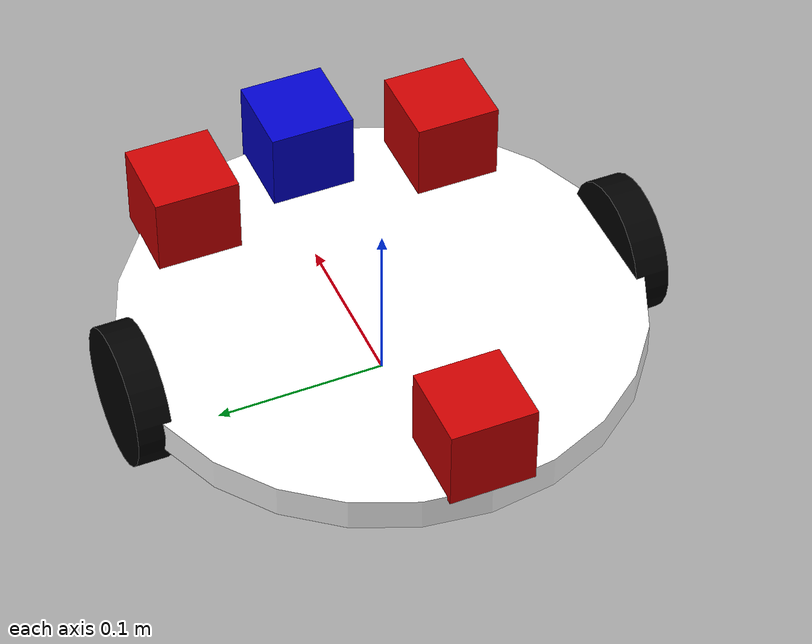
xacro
<?xml version="1.0" ?>
<!-- |    This document was autogenerated by xacro from diff_wheeled_robot.xacro       | -->
<!-- |    EDITING THIS FILE BY HAND IS NOT RECOMMENDED                                 | -->
<robot name="differential_wheeled_robot" xmlns:xacro="http://www.ros.org/wiki/xacro">
  <!-- Wheels -->
  <!-- in kg-->
  <!-- Defining the colors used in this robot -->
  <material name="Black">
    <color rgba="0.0 0.0 0.0 1.0"/>
  </material>
  <material name="Red">
    <color rgba="0.8 0.0 0.0 1.0"/>
  </material>
  <material name="White">
    <color rgba="1.0 1.0 1.0 1.0"/>
  </material>
  <material name="Blue">
    <color rgba="0.0 0.0 0.8 1.0"/>
  </material>
  <!-- PROPERTY LIST -->
  <!--All units in m-kg-s-radians unit system -->
  <!-- Main body radius and height -->
  <!-- Main Body Cylinder base   -->
  <!-- in kg-->
  <!-- caster wheel radius and height -->
  <!-- caster wheel mass -->
  <!-- in kg-->
  <!-- caster wheel radius and height -->
  <!-- caster wheel mass -->
  <!-- in kg-->
  <!-- Wheels -->
   --&gt;
  <!-- in kg-->
  <!-- Hokuyo Laser scanner -->
  <!-- Macro for calculating inertia of cylinder -->
  <!-- BASE-FOOTPRINT -->
  <!-- base_footprint is a fictitious link(frame) that is on the ground right below base_link origin -->
  <link name="base_footprint">
    <inertial>
      <mass value="0.0001"/>
      <origin xyz="0 0 0"/>
      <inertia ixx="0.0001" ixy="0.0" ixz="0.0" iyy="0.0001" iyz="0.0" izz="0.0001"/>
    </inertial>
    <visual>
      <origin rpy="0 0 0" xyz="0 0 0"/>
      <geometry>
        <box size="0.001 0.001 0.001"/>
      </geometry>
    </visual>
  </link>
  <gazebo reference="base_footprint">
    <turnGravityOff>false</turnGravityOff>
  </gazebo>
  <joint name="base_footprint_joint" type="fixed">
    <origin rpy="0 0 0" xyz="0 0 0.04"/>
    <parent link="base_footprint"/>
    <child link="base_link"/>
  </joint>
  <!-- BASE-LINK -->
  <!--Actual body/chassis of the robot-->
  <link name="base_link">
    <inertial>
      <mass value="5"/>
      <origin xyz="0 0 0"/>
      <!--The 3x3 rotational inertia matrix. -->
      <inertia ixx="0.0282916666667" ixy="0" ixz="0" iyy="0.0282916666667" iyz="0" izz="0.05625"/>
    </inertial>
    <visual>
      <origin rpy="0 0 0" xyz="0 0 0"/>
      <geometry>
        <cylinder length="0.02" radius="0.15"/>
      </geometry>
      <material name="White"/>
    </visual>
    <collision>
      <origin rpy="0 0 0 " xyz="0 0 0"/>
      <geometry>
        <cylinder length="0.02" radius="0.15"/>
      </geometry>
    </collision>
  </link>
  <gazebo reference="base_link">
    <material>Gazebo/White</material>
    <turnGravityOff>false</turnGravityOff>
  </gazebo>
  <!--fb : front, back ; lr: left, right -->
  <link name="front_right_wheel">
    <visual>
      <origin rpy="1.57079632679 0  0 " xyz="0 0 0"/>
      <geometry>
        <cylinder length="0.02" radius="0.04"/>
      </geometry>
      <material name="Black"/>
    </visual>
    <collision>
      <origin rpy="1.57079632679 0 0 " xyz="0 0 0"/>
      <geometry>
        <cylinder length="0.02" radius="0.04"/>
      </geometry>
    </collision>
    <inertial>
      <mass value="2.5"/>
      <origin xyz="0 0 0"/>
      <inertia ixx="0.00108333333333" ixy="0" ixz="0" iyy="0.00108333333333" iyz="0" izz="0.002"/>
    </inertial>
  </link>
  <gazebo reference="front_right_wheel">
    <mu1 value="1.0"/>
    <mu2 value="1.0"/>
    <kp value="10000000.0"/>
    <kd value="1.0"/>
    <fdir1 value="1 0 0"/>
    <material>Gazebo/Grey</material>
    <turnGravityOff>false</turnGravityOff>
  </gazebo>
  <joint name="front_right_wheel_joint" type="continuous">
    <parent link="base_link"/>
    <child link="front_right_wheel"/>
    <origin rpy="0 0 0" xyz="0.0 0.15 0.0"/>
    <axis rpy="0  0" xyz="0 1 0"/>
    <limit effort="100" velocity="100"/>
    <joint_properties damping="0.0" friction="0.0"/>
  </joint>
  <!-- Transmission is important to link the joints and the controller -->
  <transmission name="front_right_wheel_joint_trans">
    <type>transmission_interface/SimpleTransmission</type>
    <joint name="front_right_wheel_joint"/>
    <actuator name="front_right_wheel_joint_motor">
      <hardwareInterface>EffortJointInterface</hardwareInterface>
      <mechanicalReduction>1</mechanicalReduction>
    </actuator>
  </transmission>
  <!--fb : front, back ; lr: left, right -->
  <link name="front_left_wheel">
    <visual>
      <origin rpy="1.57079632679 0  0 " xyz="0 0 0"/>
      <geometry>
        <cylinder length="0.02" radius="0.04"/>
      </geometry>
      <material name="Black"/>
    </visual>
    <collision>
      <origin rpy="1.57079632679 0 0 " xyz="0 0 0"/>
      <geometry>
        <cylinder length="0.02" radius="0.04"/>
      </geometry>
    </collision>
    <inertial>
      <mass value="2.5"/>
      <origin xyz="0 0 0"/>
      <inertia ixx="0.00108333333333" ixy="0" ixz="0" iyy="0.00108333333333" iyz="0" izz="0.002"/>
    </inertial>
  </link>
  <gazebo reference="front_left_wheel">
    <mu1 value="1.0"/>
    <mu2 value="1.0"/>
    <kp value="10000000.0"/>
    <kd value="1.0"/>
    <fdir1 value="1 0 0"/>
    <material>Gazebo/Grey</material>
    <turnGravityOff>false</turnGravityOff>
  </gazebo>
  <joint name="front_left_wheel_joint" type="continuous">
    <parent link="base_link"/>
    <child link="front_left_wheel"/>
    <origin rpy="0 0 0" xyz="0.0 -0.15 0.0"/>
    <axis rpy="0  0" xyz="0 1 0"/>
    <limit effort="100" velocity="100"/>
    <joint_properties damping="0.0" friction="0.0"/>
  </joint>
  <!--Transmission is important to link the joints and the controller -->
  <transmission name="front_left_wheel_joint_trans">
    <type>transmission_interface/SimpleTransmission</type>
    <joint name="front_left_wheel_joint"/>
    <actuator name="front_left_wheel_joint_motor">
      <hardwareInterface>EffortJointInterface</hardwareInterface>
      <mechanicalReduction>1</mechanicalReduction>
    </actuator>
  </transmission>
  <!--Caster front  -->
  <link name="caster_front_link">
    <visual>
      <origin rpy="1.57079632679 0 0" xyz="0 0.02 0"/>
      <geometry>
        <sphere radius="0.025"/>
      </geometry>
      <material name="Black"/>
    </visual>
    <collision>
      <geometry>
        <sphere radius="0.025"/>
      </geometry>
      <origin rpy="1.57079632679 0 0" xyz="0 0.02 0"/>
    </collision>
    <inertial>
      <mass value="0.5"/>
      <origin xyz="0 0 0"/>
      <inertia ixx="0.001" ixy="0.0" ixz="0.0" iyy="0.001" iyz="0.0" izz="0.001"/>
    </inertial>
  </link>
  <joint name="caster_front_joint" type="fixed">
    <parent link="base_link"/>
    <child link="caster_front_link"/>
    <origin rpy="-1.57079632679 0 0" xyz="0.115 0.0 0.007"/>
  </joint>
  <gazebo reference="caster_front_link">
    <turnGravityOff>false</turnGravityOff>
  </gazebo>
  <!--Caster back  -->
  <link name="caster_back_link">
    <visual>
      <origin rpy="1.57079632679 0 0" xyz="0.02 0.02 0 "/>
      <geometry>
        <sphere radius="0.025"/>
      </geometry>
      <material name="Black"/>
    </visual>
    <collision>
      <geometry>
        <sphere radius="0.025"/>
      </geometry>
      <origin rpy="1.57079632679 0 0" xyz="0 0.02 0 "/>
    </collision>
    <inertial>
      <mass value="0.5"/>
      <origin xyz="0 0 0"/>
      <inertia ixx="0.001" ixy="0.0" ixz="0.0" iyy="0.001" iyz="0.0" izz="0.001"/>
    </inertial>
  </link>
  <joint name="caster_back_joint" type="fixed">
    <parent link="base_link"/>
    <child link="caster_back_link"/>
    <origin rpy="-1.57079632679 0 0" xyz="-0.135 0.0 0.009"/>
  </joint>
  <gazebo reference="caster_back_link">
    <turnGravityOff>false</turnGravityOff>
  </gazebo>
  <!-- SENSORS -->

  <link name="hokuyo_link">
    <visual>
      <origin rpy="0 0 0" xyz="0 0 0"/>
      <geometry>
        <box size="0.05 0.05 0.05"/>
      </geometry>
      <material name="Blue"/>
    </visual>
  </link>
  <joint name="hokuyo_joint" type="fixed">
    <origin rpy="0 0 0" xyz="0.125 0 0.0325"/>
    <parent link="base_link"/>
    <child link="hokuyo_link"/>
  </joint>
  <gazebo reference="hokuyo_link">
    <material>Gazebo/Blue</material>
    <turnGravityOff>false</turnGravityOff>
    <sensor name="head_hokuyo_sensor" type="ray">
      <pose>0.025 0 0 0 0 0</pose>
      <visualize>false</visualize>
      <update_rate>40</update_rate>
      <ray>
        <scan>
          <horizontal>
            <samples>720</samples>
            <resolution>1</resolution>
            <min_angle>-1.570796</min_angle>
            <max_angle>1.570796</max_angle>
          </horizontal>
        </scan>
        <range>
          <min>0.10</min>
          <max>10.0</max>
          <resolution>0.001</resolution>
        </range>
      </ray>
      <plugin filename="libgazebo_ros_laser.so" name="gazebo_ros_head_hokuyo_controller">
        <topicName>/scan</topicName>
        <frameName>hokuyo_link</frameName>
      </plugin>
    </sensor>
  </gazebo>

  <joint name="camera_joint" type="fixed">
    <axis xyz="0 1 0" />
    <origin xyz="-0.125 0 0.0325" rpy="0 0 3.14"/>
    <parent link="base_link"/>
    <child link="camera_link"/>
  </joint>

  <!-- Camera -->
  <link name="camera_link">
    <collision>
      <origin xyz="0 0 0" rpy="0 0 0"/>
      <geometry>
    <box size="0.05 0.05 0.05"/>
      </geometry>
    </collision>

    <visual>
      <origin xyz="0 0 0" rpy="0 0 0"/>
      <geometry>
    <box size="0.05 0.05 0.05"/>
      </geometry>
      <material name="Red"/>
    </visual>

    <inertial>
      <mass value="1" />
      <origin xyz="0 0 0" rpy="0 0 0"/>
      <inertia ixx="1e-6" ixy="0" ixz="0" iyy="1e-6" iyz="0" izz="1e-6" />
    </inertial>
  </link>

  <gazebo reference="camera_link">
    <sensor type="camera" name="bcamera">
      <update_rate>30.0</update_rate>
      <camera name="head">
        <horizontal_fov>1.3962634</horizontal_fov>
        <image>
          <width>800</width>
          <height>800</height>
          <format>R8G8B8</format>
        </image>
        <clip>
          <near>0.02</near>
          <far>300</far>
        </clip>
        <noise>
          <type>gaussian</type>
          <!-- Noise is sampled independently per pixel on each frame.
               That pixel's noise value is added to each of its color
               channels, which at that point lie in the range [0,1]. -->
          <mean>0.0</mean>
          <stddev>0.007</stddev>
        </noise>
      </camera>
      <plugin name="camera_controller" filename="libgazebo_ros_camera.so">
        <alwaysOn>true</alwaysOn>
        <updateRate>0.0</updateRate>
        <cameraName>rrbot/bcamera</cameraName>
        <imageTopicName>image_raw</imageTopicName>
        <cameraInfoTopicName>camera_info</cameraInfoTopicName>
        <frameName>camera_link</frameName>
        <hackBaseline>0.07</hackBaseline>
        <distortionK1>0.0</distortionK1>
        <distortionK2>0.0</distortionK2>
        <distortionK3>0.0</distortionK3>
        <distortionT1>0.0</distortionT1>
        <distortionT2>0.0</distortionT2>
      </plugin>
    </sensor>
  </gazebo>

<!--Right camera-->

  <joint name="camera_joint1" type="fixed">
    <axis xyz="0 1 0" />
    <origin xyz="0.1 0.08 0.0325" rpy="0 0 0"/>
    <parent link="base_link"/>
    <child link="r_camera"/>
  </joint>

  <link name="r_camera">
    <collision>
      <origin xyz="0 0 0" rpy="0 0 0"/>
      <geometry>
    <box size="0.05 0.05 0.05"/>
      </geometry>
    </collision>

    <visual>
      <origin xyz="0 0 0" rpy="0 0 0"/>
      <geometry>
    <box size="0.05 0.05 0.05"/>
      </geometry>
      <material name="Red"/>
    </visual>

    <inertial>
      <mass value="1" />
      <origin xyz="0 0 0" rpy="0 0 0"/>
      <inertia ixx="1e-6" ixy="0" ixz="0" iyy="1e-6" iyz="0" izz="1e-6" />
    </inertial>
  </link>
   <gazebo reference='r_camera'>
  <material> gazebo/white</material>
  </gazebo>

<!--Left camera-->

  <joint name="camera_joint2" type="fixed">
    <axis xyz="0 1 0" />
    <origin xyz="0.1 -0.08 0.0325" rpy="0 0 0"/>
    <parent link="base_link"/>
    <child link="l_camera"/>
  </joint>

  <link name="l_camera">
    <collision>
      <origin xyz="0 0 0" rpy="0 0 0"/>
      <geometry>
    <box size="0.05 0.05 0.05"/>
      </geometry>
    </collision>

    <visual>
      <origin xyz="0 0 0" rpy="0 0 0"/>
      <geometry>
    <box size="0.05 0.05 0.05"/>
      </geometry>
      <material name="Red"/>
    </visual>

    <inertial>
      <mass value="1" />
      <origin xyz="0 0 0" rpy="0 0 0"/>
      <inertia ixx="1e-6" ixy="0" ixz="0" iyy="1e-6" iyz="0" izz="1e-6" />
    </inertial>
  </link>

 <gazebo reference="l_camera">
 <material> gazebo/white</material>
    <sensor type="multicamera" name="stereo_camera">
      <update_rate>30.0</update_rate>
      <camera name="left">
        <horizontal_fov>1.3962634</horizontal_fov>
        <image>
          <width>800</width>
          <height>800</height>
          <format>R8G8B8</format>
        </image>
        <clip>
          <near>0.02</near>
          <far>300</far>
        </clip>
        <noise>
          <type>gaussian</type>
          <mean>0.0</mean>
          <stddev>0.007</stddev>
        </noise>
      </camera>
      <camera name="right">
        <pose>0 -0.07 0 0 0 0</pose>
        <horizontal_fov>1.3962634</horizontal_fov>
        <image>
          <width>800</width>
          <height>800</height>
          <format>R8G8B8</format>
        </image>
        <clip>
          <near>0.02</near>
          <far>300</far>
        </clip>
        <noise>
          <type>gaussian</type>
          <mean>0.0</mean>
          <stddev>0.007</stddev>
        </noise>
      </camera>
      <plugin name="stereo_camera_controller" filename="libgazebo_ros_multicamera.so">
        <alwaysOn>true</alwaysOn>
        <updateRate>0.0</updateRate>
        <cameraName>rrbot/camera</cameraName>
        <imageTopicName>image_raw</imageTopicName>
        <cameraInfoTopicName>camera_info</cameraInfoTopicName>
        <frameName>l_camera</frameName>
        <rightFrameName>r_camera</rightFrameName>
        <hackBaseline>0.07</hackBaseline>
        <distortionK1>0.0</distortionK1>
        <distortionK2>0.0</distortionK2>
        <distortionK3>0.0</distortionK3>
        <distortionT1>0.0</distortionT1>
        <distortionT2>0.0</distortionT2>
      </plugin>
    </sensor>
  </gazebo>

  <!-- Differential drive controller  -->
  <gazebo>
    <plugin filename="libgazebo_ros_diff_drive.so" name="differential_drive_controller_front">
      <rosDebugLevel>Debug</rosDebugLevel>
      <publishWheelTF>True</publishWheelTF>
      <publishTf>1</publishTf>
      <publishWheelJointState>true</publishWheelJointState>
      <alwaysOn>true</alwaysOn>
      <updateRate>100.0</updateRate>
      <leftJoint>front_left_wheel_joint</leftJoint>
      <rightJoint>front_right_wheel_joint</rightJoint>
      <wheelSeparation>0.3</wheelSeparation>
      <wheelDiameter>0.08</wheelDiameter>
      <broadcastTF>1</broadcastTF>
      <wheelTorque>30</wheelTorque>
      <wheelAcceleration>1.8</wheelAcceleration>
      <commandTopic>cmd_vel</commandTopic>
      <odometryFrame>odom</odometryFrame>
      <odometryTopic>odom</odometryTopic>
      <robotBaseFrame>base_link</robotBaseFrame>
    </plugin>
  </gazebo>
</robot>
